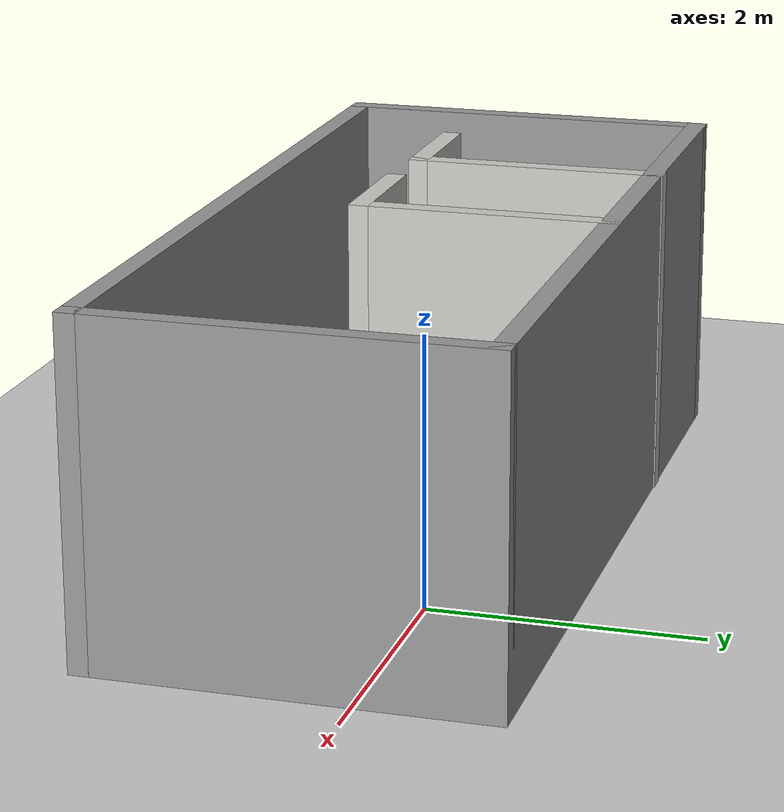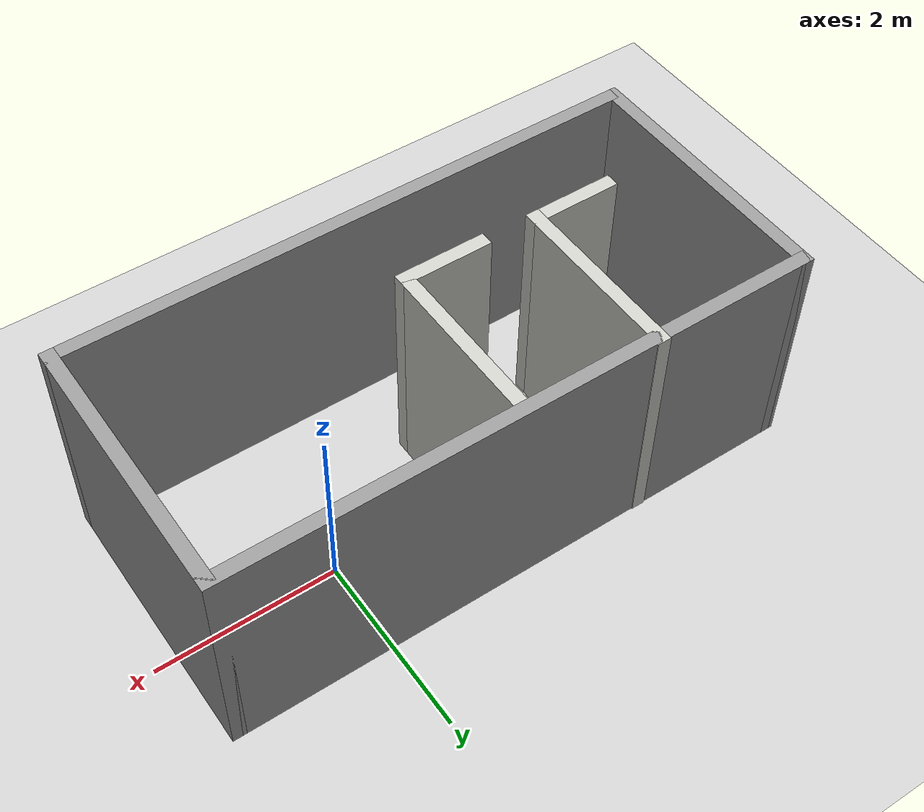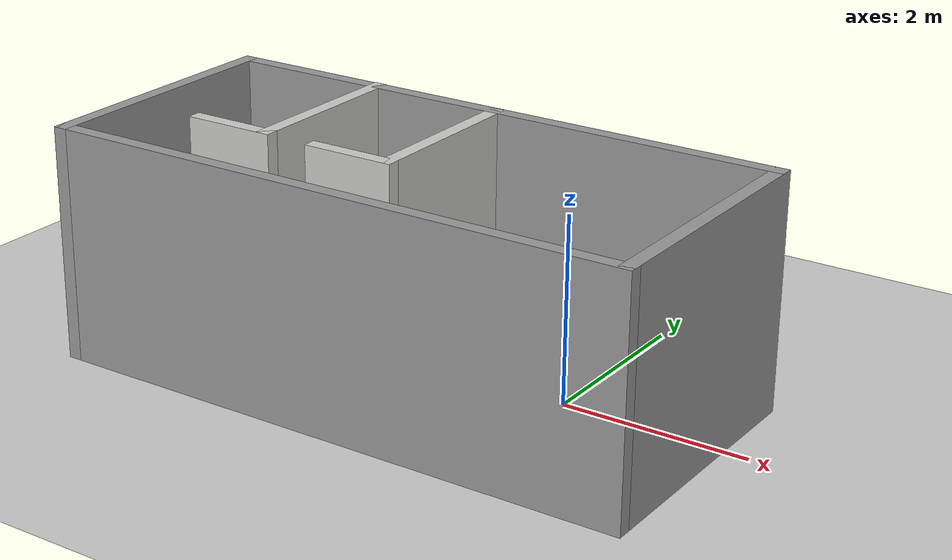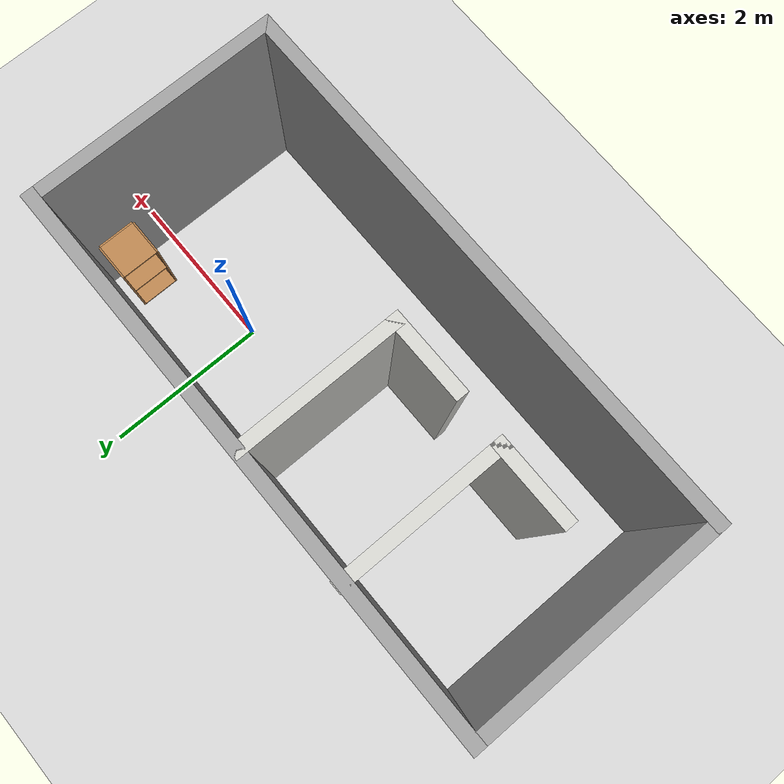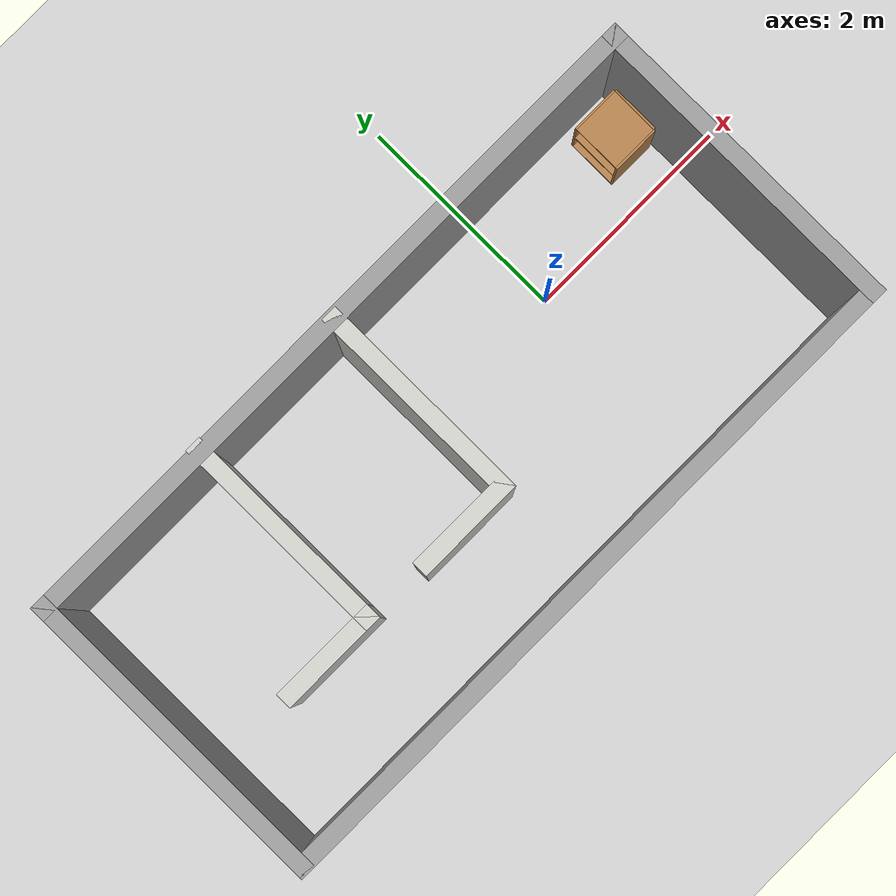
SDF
<sdf version="1.7">
 <world name="default">
  <light name="sun" type="directional">
   <pose>0 0 10 0 -0 0</pose>
   <diffuse>0.8 0.8 0.8 1</diffuse>
   <specular>0.2 0.2 0.2 1</specular>
   <attenuation>
    <range>1000</range>
    <constant>0.9</constant>
    <linear>0.01</linear>
    <quadratic>0.001</quadratic>
   </attenuation>
   <direction>-0.5 0.1 -0.9</direction>
   <spot><inner_angle>0</inner_angle><outer_angle>0</outer_angle><falloff>0</falloff></spot>
  </light>
  <model name="ground_plane">
   <static>1</static>
   <link name="link">
    <collision name="collision">
     <geometry><plane><normal>0 0 1</normal><size>100 100</size></plane></geometry>
     <surface>
      <contact><collide_bitmask>65535</collide_bitmask></contact>
      <friction><ode><mu>100</mu><mu2>50</mu2></ode></friction>
     </surface>
    </collision>
    <visual name="visual">
     <cast_shadows>0</cast_shadows>
     <geometry><plane><normal>0 0 1</normal><size>100 100</size></plane></geometry>
     <material>
      <script><uri>file://media/materials/scripts/gazebo.material</uri><name>Gazebo/Grey</name></script>
     </material>
    </visual>
   </link>
  </model>
  <gravity>0 0 -9.8</gravity>
  <magnetic_field>6e-06 2.3e-05 -4.2e-05</magnetic_field>
  <atmosphere type="adiabatic"/>
  <physics type="ode">
   <max_step_size>0.001</max_step_size>
   <real_time_factor>1</real_time_factor>
   <real_time_update_rate>1000</real_time_update_rate>
  </physics>
  <scene><ambient>0.4 0.4 0.4 1</ambient><background>0.7 0.7 0.7 1</background><shadows>1</shadows></scene>
  <spherical_coordinates>
   <surface_model>EARTH_WGS84</surface_model>
   <latitude_deg>0</latitude_deg>
   <longitude_deg>0</longitude_deg>
   <elevation>0</elevation>
   <heading_deg>0</heading_deg>
  </spherical_coordinates>
  <model name="house">
   <pose>-1.50499 0.027132 0 0 -0 0</pose>
   <link name="Wall_0">
    <collision name="Wall_0_Collision">
     <geometry><box><size>6.5 0.15 2.5</size></box></geometry>
     <pose>0 0 1.25 0 -0 0</pose>
    </collision>
    <visual name="Wall_0_Visual">
     <pose>0 0 1.25 0 -0 0</pose>
     <geometry><box><size>6.5 0.15 2.5</size></box></geometry>
     <material>
      <script><uri>file://media/materials/scripts/gazebo.material</uri><name>Gazebo/Grey</name></script>
      <ambient>1 1 1 1</ambient>
     </material>
     <meta><layer>0</layer></meta>
    </visual>
    <pose>0 0.9375 0 0 -0 0</pose>
   </link>
   <link name="Wall_1">
    <collision name="Wall_1_Collision">
     <geometry><box><size>3 0.15 2.5</size></box></geometry>
     <pose>0 0 1.25 0 -0 0</pose>
    </collision>
    <visual name="Wall_1_Visual">
     <pose>0 0 1.25 0 -0 0</pose>
     <geometry><box><size>3 0.15 2.5</size></box></geometry>
     <material>
      <script><uri>file://media/materials/scripts/gazebo.material</uri><name>Gazebo/Grey</name></script>
      <ambient>1 1 1 1</ambient>
     </material>
     <meta><layer>0</layer></meta>
    </visual>
    <pose>3.175 -0.4875 0 0 -0 -1.5708</pose>
   </link>
   <link name="Wall_10">
    <collision name="Wall_10_Collision">
     <geometry><box><size>2 0.15 2.5</size></box></geometry>
     <pose>0 0 1.25 0 -0 0</pose>
    </collision>
    <visual name="Wall_10_Visual">
     <pose>0 0 1.25 0 -0 0</pose>
     <geometry><box><size>2 0.15 2.5</size></box></geometry>
     <material>
      <script><uri>file://media/materials/scripts/gazebo.material</uri><name>Gazebo/CeilingTiled</name></script>
      <ambient>1 1 1 1</ambient>
     </material>
     <meta><layer>0</layer></meta>
    </visual>
    <pose>0.035 -0.0075 0 0 -0 -1.5708</pose>
   </link>
   <link name="Wall_11">
    <collision name="Wall_11_Collision">
     <geometry><box><size>1 0.15 2.5</size></box></geometry>
     <pose>0 0 1.25 0 -0 0</pose>
    </collision>
    <visual name="Wall_11_Visual">
     <pose>0 0 1.25 0 -0 0</pose>
     <geometry><box><size>1 0.15 2.5</size></box></geometry>
     <material>
      <script><uri>file://media/materials/scripts/gazebo.material</uri><name>Gazebo/CeilingTiled</name></script>
      <ambient>1 1 1 1</ambient>
     </material>
     <meta><layer>0</layer></meta>
    </visual>
    <pose>-0.39 -0.9325 0 0 -0 3.14159</pose>
   </link>
   <link name="Wall_2">
    <collision name="Wall_2_Collision">
     <geometry><box><size>6.5 0.15 2.5</size></box></geometry>
     <pose>0 0 1.25 0 -0 0</pose>
    </collision>
    <visual name="Wall_2_Visual">
     <pose>0 0 1.25 0 -0 0</pose>
     <geometry><box><size>6.5 0.15 2.5</size></box></geometry>
     <material>
      <script><uri>file://media/materials/scripts/gazebo.material</uri><name>Gazebo/Grey</name></script>
      <ambient>1 1 1 1</ambient>
     </material>
     <meta><layer>0</layer></meta>
    </visual>
    <pose>0 -1.9125 0 0 -0 3.14159</pose>
   </link>
   <link name="Wall_3">
    <collision name="Wall_3_Collision">
     <geometry><box><size>3 0.15 2.5</size></box></geometry>
     <pose>0 0 1.25 0 -0 0</pose>
    </collision>
    <visual name="Wall_3_Visual">
     <pose>0 0 1.25 0 -0 0</pose>
     <geometry><box><size>3 0.15 2.5</size></box></geometry>
     <material>
      <script><uri>file://media/materials/scripts/gazebo.material</uri><name>Gazebo/Grey</name></script>
      <ambient>1 1 1 1</ambient>
     </material>
     <meta><layer>0</layer></meta>
    </visual>
    <pose>-3.175 -0.4875 0 0 -0 1.5708</pose>
   </link>
   <link name="Wall_5">
    <collision name="Wall_5_Collision">
     <geometry><box><size>2 0.15 2.5</size></box></geometry>
     <pose>0 0 1.25 0 -0 0</pose>
    </collision>
    <visual name="Wall_5_Visual">
     <pose>0 0 1.25 0 -0 0</pose>
     <geometry><box><size>2 0.15 2.5</size></box></geometry>
     <material>
      <script><uri>file://media/materials/scripts/gazebo.material</uri><name>Gazebo/CeilingTiled</name></script>
      <ambient>1 1 1 1</ambient>
     </material>
     <meta><layer>0</layer></meta>
    </visual>
    <pose>-1.445 0.0225 0 0 -0 -1.5708</pose>
   </link>
   <link name="Wall_6">
    <collision name="Wall_6_Collision">
     <geometry><box><size>1 0.15 2.5</size></box></geometry>
     <pose>0 0 1.25 0 -0 0</pose>
    </collision>
    <visual name="Wall_6_Visual">
     <pose>0 0 1.25 0 -0 0</pose>
     <geometry><box><size>1 0.15 2.5</size></box></geometry>
     <material>
      <script><uri>file://media/materials/scripts/gazebo.material</uri><name>Gazebo/CeilingTiled</name></script>
      <ambient>1 1 1 1</ambient>
     </material>
     <meta><layer>0</layer></meta>
    </visual>
    <pose>-1.87 -0.9025 0 0 -0 3.14159</pose>
   </link>
   <static>1</static>
  </model>
  <model name="cabinet">
   <static>1</static>
   <link name="cabinet_bottom_plate">
    <inertial>
     <pose>0 0 -1 0 -0 0</pose>
     <inertia><ixx>2.05</ixx><ixy>0</ixy><ixz>0</ixz><iyy>2.05</iyy><iyz>0</iyz><izz>2.05</izz></inertia>
     <mass>25</mass>
    </inertial>
    <collision name="cabinet_bottom_plate_geom">
     <pose>0 0 0.01 0 -0 0</pose>
     <geometry><box><size>0.45 0.45 0.02</size></box></geometry>
    </collision>
    <visual name="cabinet_bottom_plate_geom_visual">
     <pose>0 0 0.01 0 -0 0</pose>
     <geometry><box><size>0.45 0.45 0.02</size></box></geometry>
     <material>
      <script><uri>file://media/materials/scripts/gazebo.material</uri><name>Gazebo/Wood</name></script>
     </material>
    </visual>
    <collision name="cabinet_bottom_plate_geom_cabinet_back_plate">
     <pose>0.235 0 0.51 0 -0 0</pose>
     <geometry><box><size>0.02 0.45 1.02</size></box></geometry>
    </collision>
    <visual name="cabinet_bottom_plate_geom_cabinet_back_plate_visual">
     <pose>0.235 0 0.51 0 -0 0</pose>
     <geometry><box><size>0.02 0.45 1.02</size></box></geometry>
     <material>
      <script><uri>file://media/materials/scripts/gazebo.material</uri><name>Gazebo/Wood</name></script>
     </material>
    </visual>
    <collision name="cabinet_bottom_plate_geom_cabinet_left_plate">
     <pose>0 0.235 0.51 0 -0 0</pose>
     <geometry><box><size>0.45 0.02 1.02</size></box></geometry>
    </collision>
    <visual name="cabinet_bottom_plate_geom_cabinet_left_plate_visual">
     <pose>0 0.235 0.51 0 -0 0</pose>
     <geometry><box><size>0.45 0.02 1.02</size></box></geometry>
     <material>
      <script><uri>file://media/materials/scripts/gazebo.material</uri><name>Gazebo/Wood</name></script>
     </material>
    </visual>
    <collision name="cabinet_bottom_plate_geom_cabinet_middle_plate">
     <pose>0 0 0.51 0 -0 0</pose>
     <geometry><box><size>0.45 0.45 0.02</size></box></geometry>
    </collision>
    <visual name="cabinet_bottom_plate_geom_cabinet_middle_plate_visual">
     <pose>0 0 0.51 0 -0 0</pose>
     <geometry><box><size>0.45 0.45 0.02</size></box></geometry>
     <material>
      <script><uri>file://media/materials/scripts/gazebo.material</uri><name>Gazebo/Wood</name></script>
     </material>
    </visual>
    <collision name="cabinet_bottom_plate_geom_cabinet_right_plate">
     <pose>0 -0.235 0.51 0 -0 0</pose>
     <geometry><box><size>0.45 0.02 1.02</size></box></geometry>
    </collision>
    <visual name="cabinet_bottom_plate_geom_cabinet_right_plate_visual">
     <pose>0 -0.235 0.51 0 -0 0</pose>
     <geometry><box><size>0.45 0.02 1.02</size></box></geometry>
     <material>
      <script><uri>file://media/materials/scripts/gazebo.material</uri><name>Gazebo/Wood</name></script>
     </material>
    </visual>
    <collision name="cabinet_bottom_plate_geom_cabinet_top_plate">
     <pose>0 0 1.01 0 -0 0</pose>
     <geometry><box><size>0.45 0.45 0.02</size></box></geometry>
    </collision>
    <visual name="cabinet_bottom_plate_geom_cabinet_top_plate_visual">
     <pose>0 0 1.01 0 -0 0</pose>
     <geometry><box><size>0.45 0.45 0.02</size></box></geometry>
     <material>
      <script><uri>file://media/materials/scripts/gazebo.material</uri><name>Gazebo/Wood</name></script>
     </material>
    </visual>
   </link>
   <pose>1.33572 0.54208 0 0 -0 0</pose>
  </model>
 </world>
</sdf>
